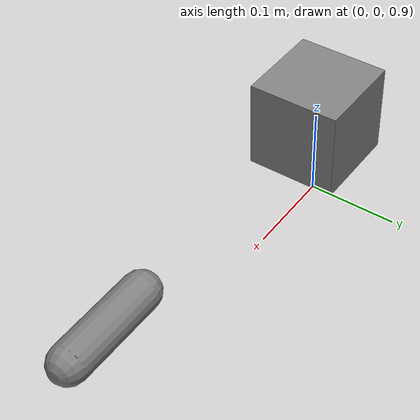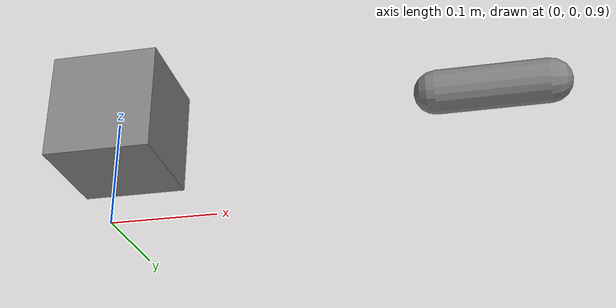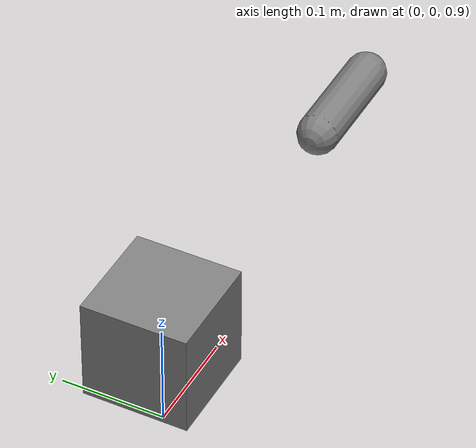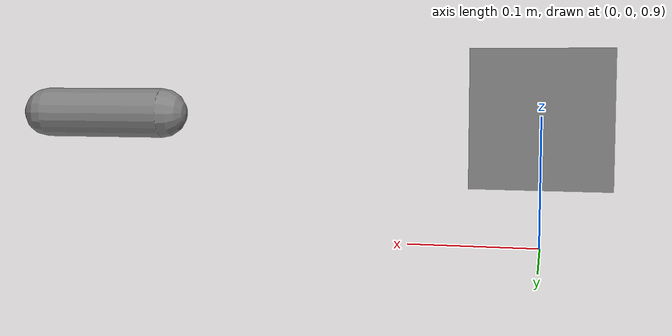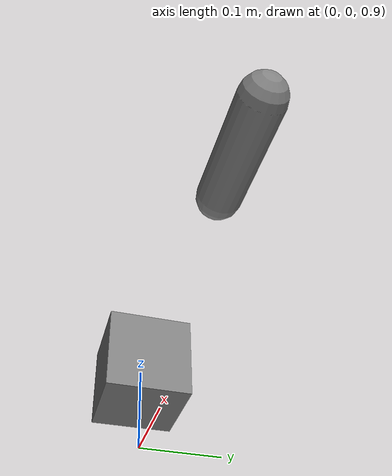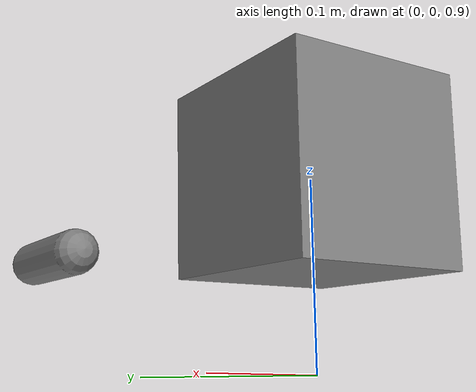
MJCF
<mujoco model="keyframes">
  <compiler angle="radian"/>
  <worldbody>
    <body name="kfree" pos="0 0 1">
      <freejoint/>
      <geom name="kfree_g" type="box" size="0.05 0.05 0.05"/>
    </body>
    <body name="khinge" pos="0.3 0 1">
      <joint name="kj" type="hinge" axis="0 0 1"/>
      <geom name="khinge_g" type="capsule" size="0.02" fromto="0 0 0 0.1 0 0"/>
    </body>
  </worldbody>
  <actuator>
    <motor name="km" joint="kj"/>
  </actuator>
  <keyframe>
    <key name="home" time="0"
         qpos="0 0 1 1 0 0 0  0"
         qvel="0 0 0 0 0 0  0"
         ctrl="0"/>
    <key name="posed" time="0.5"
         qpos="0.1 0.2 1.3 0.9238795 0 0 0.3826834  0.7"
         qvel="0.1 0 0 0 0 0.2  1.0"
         ctrl="0.5"/>
  </keyframe>
</mujoco>
